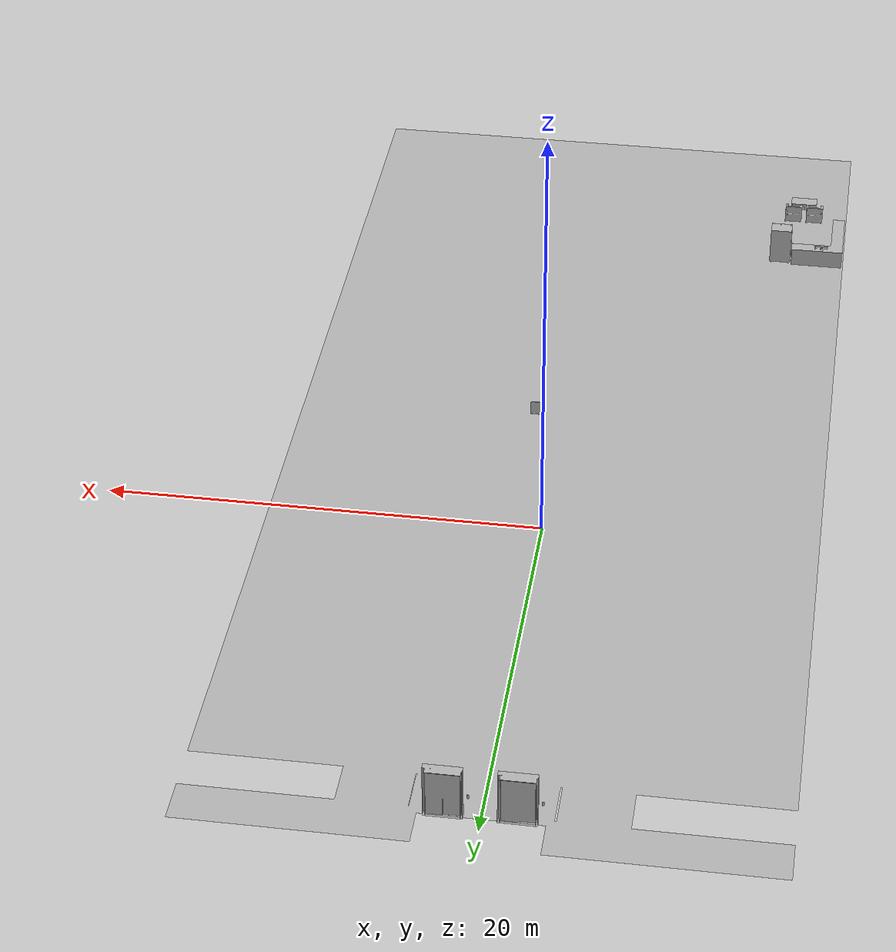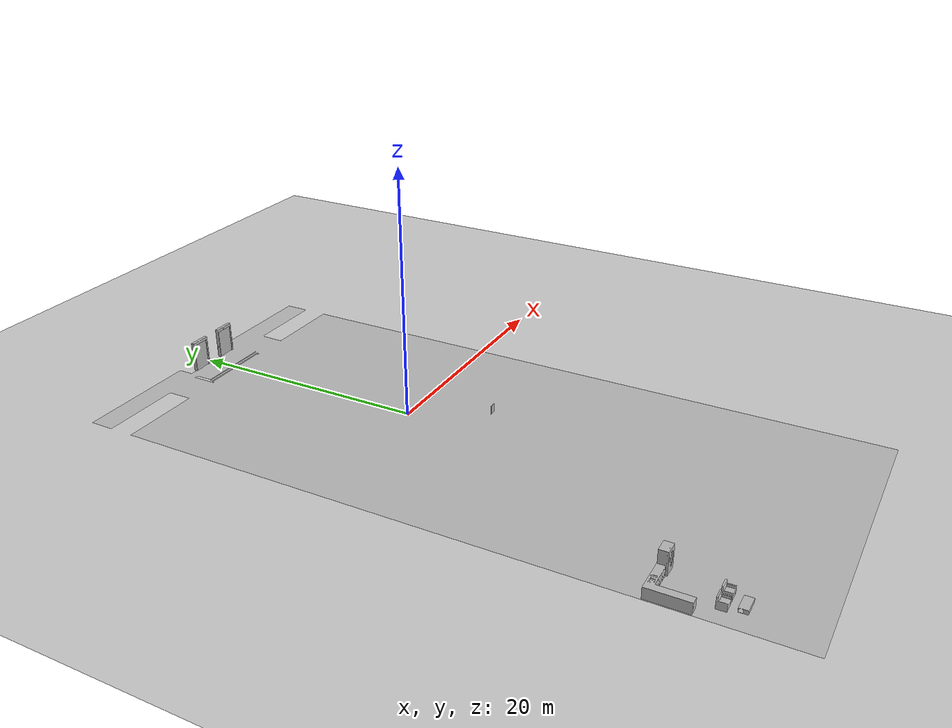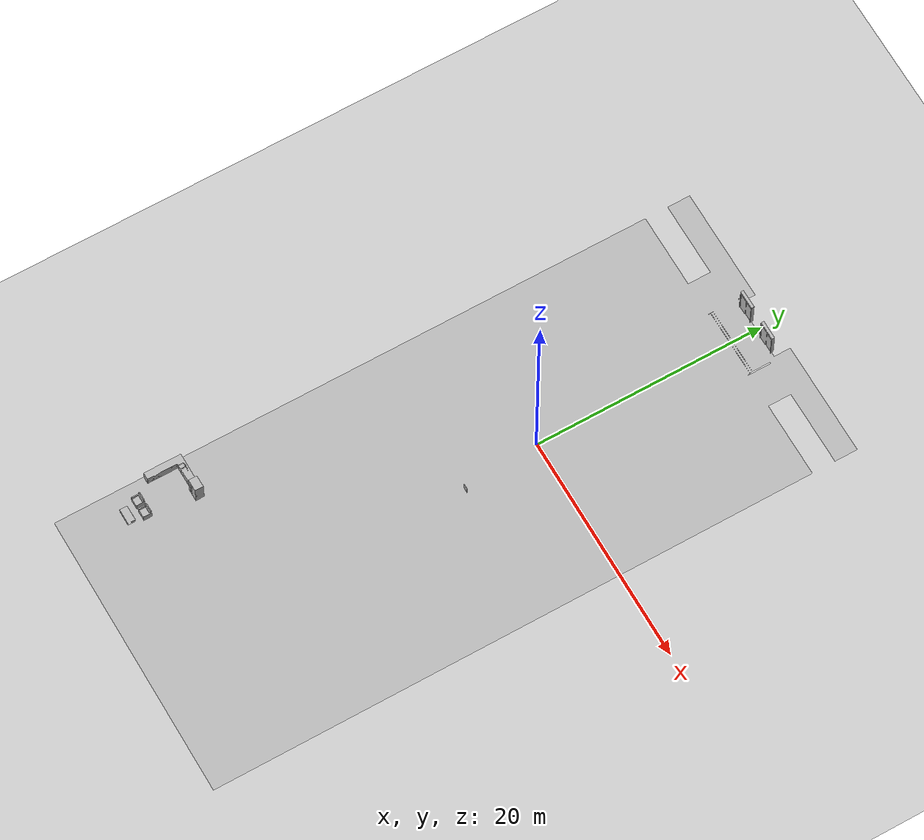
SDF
<sdf version="1.7">
 <world name="world">
  <model name="ground_plane">
   <static>1</static>
   <link name="link">
    <collision name="collision">
     <geometry><plane><normal>0 0 1</normal><size>100 100</size></plane></geometry>
     <surface><friction><ode><mu>100</mu><mu2>50</mu2></ode></friction></surface>
    </collision>
    <visual name="visual">
     <cast_shadows>0</cast_shadows>
     <geometry><plane><normal>0 0 1</normal><size>100 100</size></plane></geometry>
     <material>
      <script><uri>file://media/materials/scripts/gazebo.material</uri><name>Gazebo/Grey</name></script>
     </material>
    </visual>
   </link>
   <pose>0 0 -0.1 0 -0 0</pose>
  </model>
  <model name="aws_robomaker_hospital_floor_01_floor_1">
   <frame name="aws_robomaker_hospital_floor_01_floor::__model__" attached_to="aws_robomaker_hospital_floor_01_floor::link">
    <pose relative_to="__model__">-0.001425 -0.014447 0 0 -0 0</pose>
   </frame>
   <link name="aws_robomaker_hospital_floor_01_floor::link">
    <visual name="visual">
     <geometry>
      <mesh>
       <uri>model://aws_robomaker_hospital_floor_01_floor/meshes/aws_robomaker_hospital_floor_01_floor_visual.dae</uri>
      </mesh>
     </geometry>
    </visual>
    <collision name="collision">
     <geometry>
      <mesh>
       <uri>model://aws_robomaker_hospital_floor_01_floor/meshes/aws_robomaker_hospital_floor_01_floor_collision.dae</uri>
      </mesh>
     </geometry>
     <surface><friction><ode><mu>100</mu><mu2>50</mu2></ode></friction></surface>
    </collision>
    <pose relative_to="aws_robomaker_hospital_floor_01_floor::__model__">0 0 0 0 -0 0</pose>
   </link>
   <static>1</static>
  </model>
  <model name="aws_robomaker_hospital_elevator_01_portal_1">
   <frame name="aws_robomaker_hospital_elevator_01_portal::__model__" attached_to="aws_robomaker_hospital_elevator_01_portal::link">
    <pose relative_to="__model__">-1.50654 19.4813 0.19 0 -0 0</pose>
   </frame>
   <link name="aws_robomaker_hospital_elevator_01_portal::link">
    <visual name="visual">
     <geometry>
      <mesh>
       <uri>model://aws_robomaker_hospital_elevator_01_portal/meshes/aws_robomaker_hospital_elevator_01_portal_visual.dae</uri>
      </mesh>
     </geometry>
    </visual>
    <collision name="collision">
     <geometry>
      <mesh>
       <uri>model://aws_robomaker_hospital_elevator_01_portal/meshes/aws_robomaker_hospital_elevator_01_portal_collision.dae</uri>
      </mesh>
     </geometry>
    </collision>
    <pose relative_to="aws_robomaker_hospital_elevator_01_portal::__model__">0 0 0 0 -0 0</pose>
   </link>
   <static>1</static>
  </model>
  <model name="aws_robomaker_hospital_elevator_01_portal_2">
   <frame name="aws_robomaker_hospital_elevator_01_portal::__model__" attached_to="aws_robomaker_hospital_elevator_01_portal::link">
    <pose relative_to="__model__">1.51134 19.487 0.19 0 -0 0</pose>
   </frame>
   <link name="aws_robomaker_hospital_elevator_01_portal::link">
    <visual name="visual">
     <geometry>
      <mesh>
       <uri>model://aws_robomaker_hospital_elevator_01_portal/meshes/aws_robomaker_hospital_elevator_01_portal_visual.dae</uri>
      </mesh>
     </geometry>
    </visual>
    <collision name="collision">
     <geometry>
      <mesh>
       <uri>model://aws_robomaker_hospital_elevator_01_portal/meshes/aws_robomaker_hospital_elevator_01_portal_collision.dae</uri>
      </mesh>
     </geometry>
    </collision>
    <pose relative_to="aws_robomaker_hospital_elevator_01_portal::__model__">0 0 0 0 -0 0</pose>
   </link>
   <static>1</static>
  </model>
  <model name="aws_robomaker_hospital_elevator_01_door_1">
   <frame name="aws_robomaker_hospital_elevator_01_door::__model__" attached_to="aws_robomaker_hospital_elevator_01_door::link">
    <pose relative_to="__model__">-1.51 19.35 0.19 0 -0 0</pose>
   </frame>
   <link name="aws_robomaker_hospital_elevator_01_door::link">
    <visual name="visual">
     <geometry>
      <mesh>
       <uri>model://aws_robomaker_hospital_elevator_01_door/meshes/aws_robomaker_hospital_elevator_01_door_visual.dae</uri>
      </mesh>
     </geometry>
    </visual>
    <collision name="collision">
     <geometry>
      <mesh>
       <uri>model://aws_robomaker_hospital_elevator_01_door/meshes/aws_robomaker_hospital_elevator_01_door_collision.dae</uri>
      </mesh>
     </geometry>
    </collision>
    <pose relative_to="aws_robomaker_hospital_elevator_01_door::__model__">0 0 0 0 -0 0</pose>
   </link>
   <static>1</static>
  </model>
  <model name="aws_robomaker_hospital_elevator_01_door_2">
   <frame name="aws_robomaker_hospital_elevator_01_door::__model__" attached_to="aws_robomaker_hospital_elevator_01_door::link">
    <pose relative_to="__model__">1.52843 19.3627 0.19 0 -0 0</pose>
   </frame>
   <link name="aws_robomaker_hospital_elevator_01_door::link">
    <visual name="visual">
     <geometry>
      <mesh>
       <uri>model://aws_robomaker_hospital_elevator_01_door/meshes/aws_robomaker_hospital_elevator_01_door_visual.dae</uri>
      </mesh>
     </geometry>
    </visual>
    <collision name="collision">
     <geometry>
      <mesh>
       <uri>model://aws_robomaker_hospital_elevator_01_door/meshes/aws_robomaker_hospital_elevator_01_door_collision.dae</uri>
      </mesh>
     </geometry>
    </collision>
    <pose relative_to="aws_robomaker_hospital_elevator_01_door::__model__">0 0 0 0 -0 0</pose>
   </link>
   <static>1</static>
  </model>
  <model name="CGMClassic_1"/>
  <model name="StorageRack_1"/>
  <model name="CGMClassic_2"/>
  <model name="Chair_1"/>
  <model name="Chair_2"/>
  <model name="Scrubs_1"/>
  <model name="Scrubs_2"/>
  <model name="PatientWheelChair_1"/>
  <model name="Scrubs_3"/>
  <model name="WhiteChipChair_1"/>
  <model name="TrolleyBed_1"/>
  <model name="SurgicalTrolley_1"/>
  <model name="CGMClassic_3"/>
  <model name="PotatoChipChair_1"/>
  <model name="PotatoChipChair_2"/>
  <model name="PotatoChipChair_3"/>
  <model name="PotatoChipChair_4"/>
  <model name="PotatoChipChair_5"/>
  <model name="PotatoChipChair_6"/>
  <model name="PotatoChipChair_7"/>
  <model name="PotatoChipChair_8"/>
  <model name="VisitorKidSit_1"/>
  <model name="FemaleVisitorSit_1"/>
  <model name="AdjTable_1"/>
  <model name="PotatoChipChair_9"/>
  <model name="PotatoChipChair_10"/>
  <model name="PotatoChipChair_11"/>
  <model name="PotatoChipChair_12"/>
  <model name="PotatoChipChair_13"/>
  <model name="PotatoChipChair_14"/>
  <model name="PotatoChipChair_15"/>
  <model name="PotatoChipChair_16"/>
  <model name="aws_robomaker_residential_CoffeeTable_01_1">
   <frame name="aws_robomaker_residential_CoffeeTable_01::__model__" attached_to="aws_robomaker_residential_CoffeeTable_01::link">
    <pose relative_to="__model__">-10.2383 -29.9144 0 0 -0 0</pose>
   </frame>
   <link name="aws_robomaker_residential_CoffeeTable_01::link">
    <inertial>
     <mass>21.7</mass>
     <inertia><ixx>0.81375</ixx><ixy>0</ixy><ixz>0</ixz><iyy>2.76675</iyy><iyz>0</iyz><izz>3.254</izz></inertia>
    </inertial>
    <collision name="collision">
     <geometry>
      <mesh>
       <uri>file://models/aws_robomaker_residential_CoffeeTable_01/meshes/aws_CoffeeTable_01_collision.DAE</uri>
       <scale>1 1 1</scale>
      </mesh>
     </geometry>
     <surface><contact><ode><max_vel>0.01</max_vel></ode></contact></surface>
    </collision>
    <visual name="visual">
     <geometry>
      <mesh>
       <uri>file://models/aws_robomaker_residential_CoffeeTable_01/meshes/aws_CoffeeTable_01_visual.DAE</uri>
      </mesh>
     </geometry>
     <meta><layer>1</layer></meta>
    </visual>
    <pose relative_to="aws_robomaker_residential_CoffeeTable_01::__model__">0 0 0 0 -0 0</pose>
   </link>
   <static>1</static>
  </model>
  <model name="aws_robomaker_residential_KitchenCabinet_01_1">
   <frame name="aws_robomaker_residential_KitchenCabinet_01::__model__" attached_to="aws_robomaker_residential_KitchenCabinet_01::link">
    <pose relative_to="__model__">-11.1379 -25.6941 0 0 -0 0</pose>
   </frame>
   <link name="aws_robomaker_residential_KitchenCabinet_01::link">
    <inertial><mass>1</mass></inertial>
    <collision name="collision">
     <geometry>
      <mesh>
       <uri>file://models/aws_robomaker_residential_KitchenCabinet_01/meshes/aws_KitchenCabinet_01_collision.DAE</uri>
       <scale>1 1 1</scale>
      </mesh>
     </geometry>
    </collision>
    <visual name="visual">
     <geometry>
      <mesh>
       <uri>file://models/aws_robomaker_residential_KitchenCabinet_01/meshes/aws_KitchenCabinet_01_visual.DAE</uri>
      </mesh>
     </geometry>
     <meta><layer>1</layer></meta>
    </visual>
    <pose relative_to="aws_robomaker_residential_KitchenCabinet_01::__model__">0 0 0 0 -0 0</pose>
   </link>
   <static>1</static>
  </model>
  <model name="aws_robomaker_residential_Refrigerator_01_1">
   <frame name="aws_robomaker_residential_Refrigerator_01::__model__" attached_to="aws_robomaker_residential_Refrigerator_01::link">
    <pose relative_to="__model__">-9.28238 -24.5015 0 0 -0 0</pose>
   </frame>
   <link name="aws_robomaker_residential_Refrigerator_01::link">
    <inertial><mass>1</mass></inertial>
    <collision name="collision">
     <geometry>
      <mesh>
       <uri>file://models/aws_robomaker_residential_Refrigerator_01/meshes/aws_Refrigerator_01_collision.DAE</uri>
       <scale>1 1 1</scale>
      </mesh>
     </geometry>
    </collision>
    <visual name="visual">
     <geometry>
      <mesh>
       <uri>file://models/aws_robomaker_residential_Refrigerator_01/meshes/aws_Refrigerator_01_visual.DAE</uri>
      </mesh>
     </geometry>
     <meta><layer>1</layer></meta>
    </visual>
    <pose relative_to="aws_robomaker_residential_Refrigerator_01::__model__">0 0 0 0 -0 0</pose>
   </link>
   <static>1</static>
  </model>
  <model name="aws_robomaker_residential_SofaB_01_1">
   <frame name="aws_robomaker_residential_SofaB_01::__model__" attached_to="aws_robomaker_residential_SofaB_01::link">
    <pose relative_to="__model__">-10.8238 -28.6662 -5e-06 -1.3e-05 -2e-06 -1.56116</pose>
   </frame>
   <link name="aws_robomaker_residential_SofaB_01::link">
    <inertial><mass>72.5</mass></inertial>
    <collision name="collision">
     <geometry>
      <mesh>
       <uri>file://models/aws_robomaker_residential_SofaB_01/meshes/aws_SofaB_01_collision.DAE</uri>
       <scale>1 1 1</scale>
      </mesh>
     </geometry>
    </collision>
    <visual name="visual">
     <geometry>
      <mesh><uri>file://models/aws_robomaker_residential_SofaB_01/meshes/aws_SofaB_01_visual.DAE</uri></mesh>
     </geometry>
     <meta><layer>1</layer></meta>
    </visual>
    <pose relative_to="aws_robomaker_residential_SofaB_01::__model__">0 0 0 0 -0 0</pose>
   </link>
   <static>1</static>
  </model>
  <model name="aws_robomaker_residential_SofaB_01_2">
   <frame name="aws_robomaker_residential_SofaB_01::__model__" attached_to="aws_robomaker_residential_SofaB_01::link">
    <pose relative_to="__model__">-9.73697 -28.6538 -3e-06 1.3e-05 -4e-06 -1.56077</pose>
   </frame>
   <link name="aws_robomaker_residential_SofaB_01::link">
    <inertial><mass>72.5</mass></inertial>
    <collision name="collision">
     <geometry>
      <mesh>
       <uri>file://models/aws_robomaker_residential_SofaB_01/meshes/aws_SofaB_01_collision.DAE</uri>
       <scale>1 1 1</scale>
      </mesh>
     </geometry>
    </collision>
    <visual name="visual">
     <geometry>
      <mesh><uri>file://models/aws_robomaker_residential_SofaB_01/meshes/aws_SofaB_01_visual.DAE</uri></mesh>
     </geometry>
     <meta><layer>1</layer></meta>
    </visual>
    <pose relative_to="aws_robomaker_residential_SofaB_01::__model__">0 0 0 0 -0 0</pose>
   </link>
   <static>1</static>
  </model>
  <model name="aws_robomaker_residential_PortraitA_01_1">
   <frame name="aws_robomaker_residential_PortraitA_01::__model__" attached_to="aws_robomaker_residential_PortraitA_01::link">
    <pose relative_to="__model__">1.14738 -6.92303 1.41115 0 -0 0</pose>
   </frame>
   <link name="aws_robomaker_residential_PortraitA_01::link">
    <inertial><mass>1</mass></inertial>
    <collision name="collision">
     <geometry>
      <mesh>
       <uri>file://models/aws_robomaker_residential_PortraitA_01/meshes/aws_PortraitA_01_collision.DAE</uri>
       <scale>1 1 1</scale>
      </mesh>
     </geometry>
    </collision>
    <visual name="visual">
     <geometry>
      <mesh>
       <uri>file://models/aws_robomaker_residential_PortraitA_01/meshes/aws_PortraitA_01_visual.DAE</uri>
      </mesh>
     </geometry>
     <meta><layer>2</layer></meta>
    </visual>
    <pose relative_to="aws_robomaker_residential_PortraitA_01::__model__">0 0 0 0 -0 0</pose>
   </link>
   <static>1</static>
  </model>
 </world>
</sdf>
